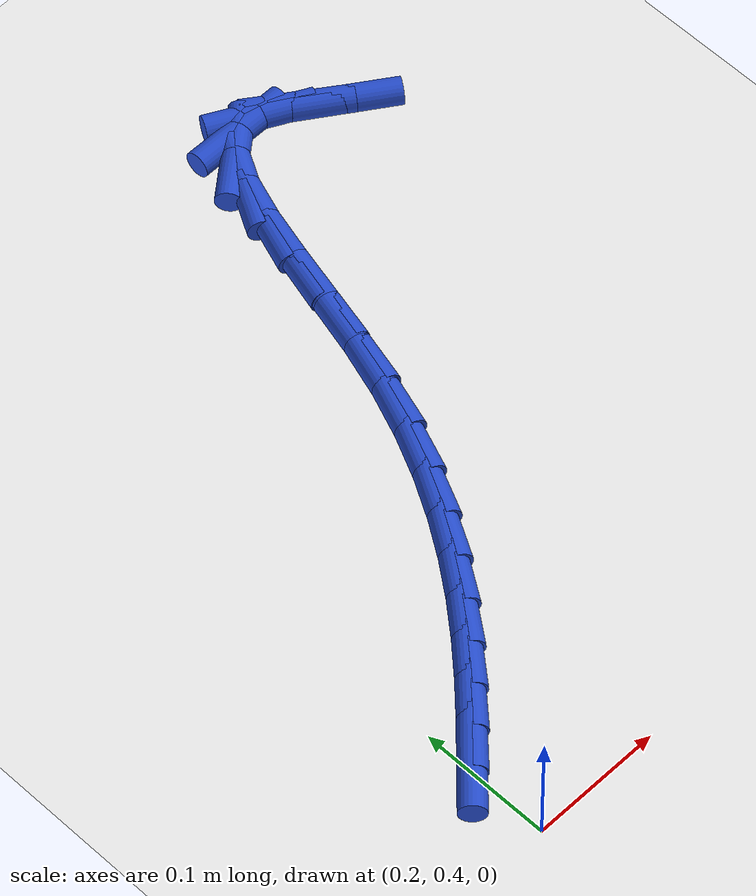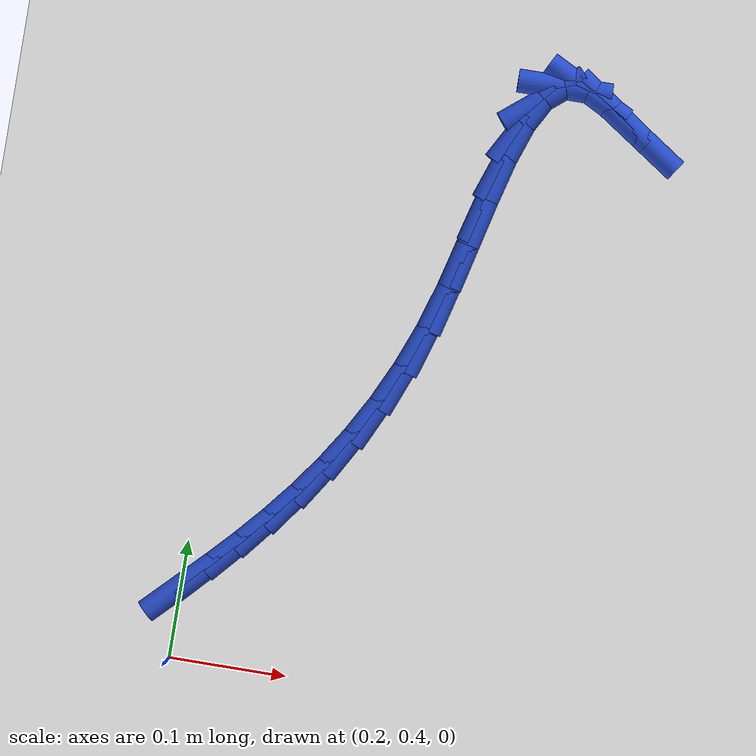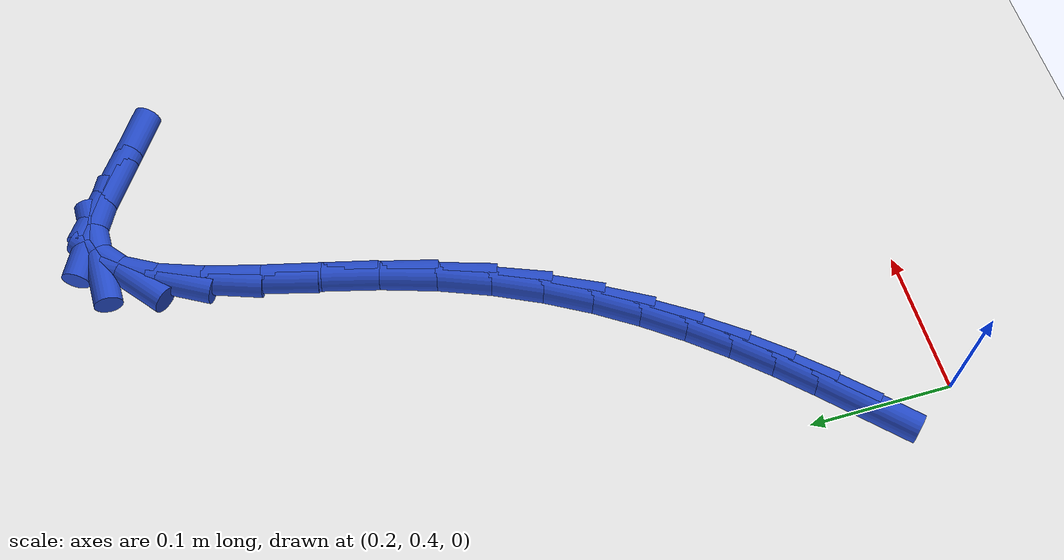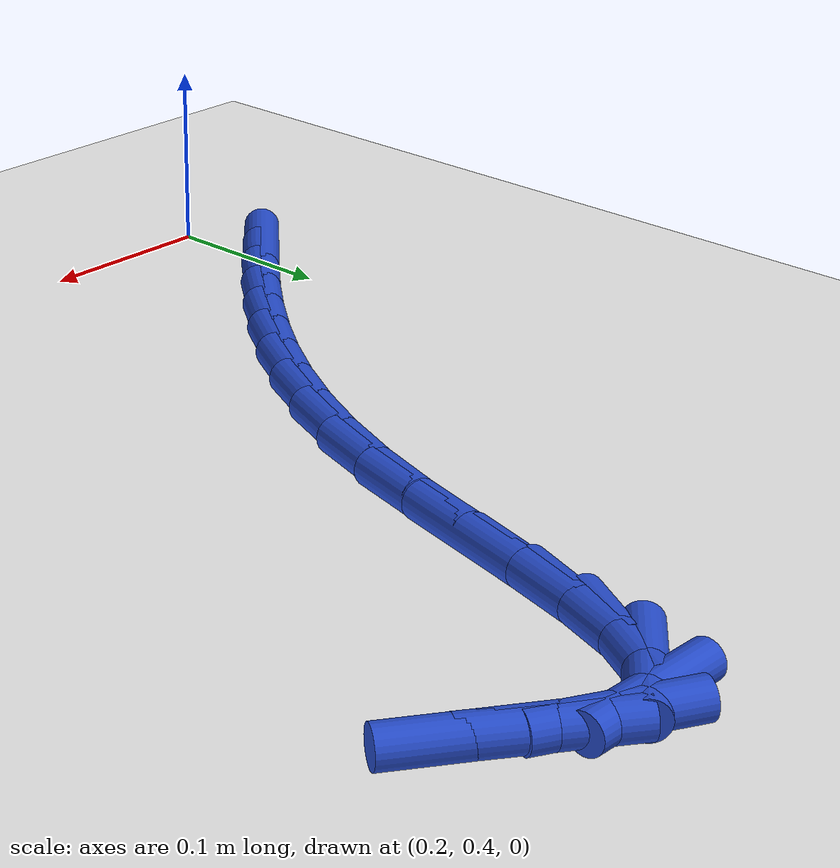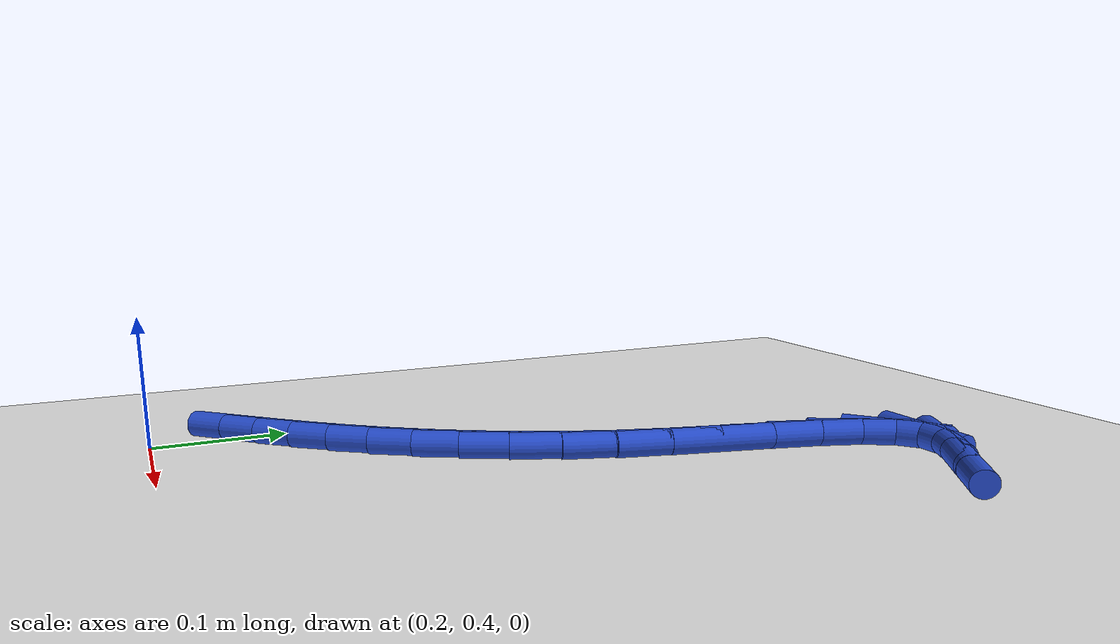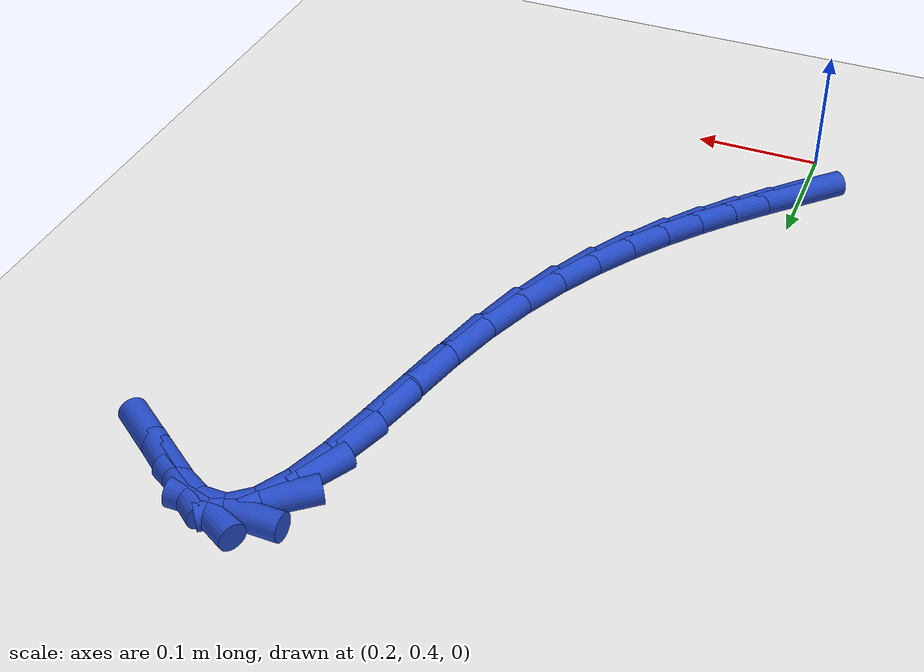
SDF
<sdf version="1.6">
 <world name="default">
  <model name="ground_plane">
   <static>1</static>
   <link name="link">
    <collision name="collision">
     <geometry><plane><normal>0 0 1</normal><size>100 100</size></plane></geometry>
     <surface><friction><ode><mu>100</mu><mu2>50</mu2></ode></friction></surface>
    </collision>
    <visual name="visual">
     <cast_shadows>0</cast_shadows>
     <geometry><plane><normal>0 0 1</normal><size>100 100</size></plane></geometry>
     <material>
      <script><uri>file://media/materials/scripts/gazebo.material</uri><name>Gazebo/WhiteGlow</name></script>
     </material>
    </visual>
   </link>
  </model>
  <model name="line">
   <link name="link_18">
    <pose>0.20257252881162002 0.46395151371870674 0.01 0 1.57 0.7851340331031088</pose>
    <collision name="collision">
     <geometry><cylinder><radius>0.01</radius><length>0.08</length></cylinder></geometry>
    </collision>
    <visual name="visual">
     <material>
      <script><name>Gazebo/Blue</name><uri>file://media/materials/scripts/gazebo.material</uri></script>
     </material>
     <geometry><cylinder><radius>0.01</radius><length>0.08</length></cylinder></geometry>
    </visual>
   </link>
   <link name="link_19">
    <pose>0.2238670176259704 0.4852347564640264 0.01 0 1.57 0.8091922949452807</pose>
    <collision name="collision">
     <geometry><cylinder><radius>0.01</radius><length>0.08</length></cylinder></geometry>
    </collision>
    <visual name="visual">
     <material>
      <script><name>Gazebo/Blue</name><uri>file://media/materials/scripts/gazebo.material</uri></script>
     </material>
     <geometry><cylinder><radius>0.01</radius><length>0.08</length></cylinder></geometry>
    </visual>
   </link>
   <link name="link_20">
    <pose>0.24499291930554368 0.5073907066180876 0.01 0 1.57 0.842997267074457</pose>
    <collision name="collision">
     <geometry><cylinder><radius>0.01</radius><length>0.08</length></cylinder></geometry>
    </collision>
    <visual name="visual">
     <material>
      <script><name>Gazebo/Blue</name><uri>file://media/materials/scripts/gazebo.material</uri></script>
     </material>
     <geometry><cylinder><radius>0.01</radius><length>0.08</length></cylinder></geometry>
    </visual>
   </link>
   <link name="link_21">
    <pose>0.2657315700870698 0.5306674097495204 0.01 0 1.57 0.8858393594590942</pose>
    <collision name="collision">
     <geometry><cylinder><radius>0.01</radius><length>0.08</length></cylinder></geometry>
    </collision>
    <visual name="visual">
     <material>
      <script><name>Gazebo/Blue</name><uri>file://media/materials/scripts/gazebo.material</uri></script>
     </material>
     <geometry><cylinder><radius>0.01</radius><length>0.08</length></cylinder></geometry>
    </visual>
   </link>
   <link name="link_22">
    <pose>0.2858643062072791 0.5553129114269553 0.01 0 1.57 0.9368326953475702</pose>
    <collision name="collision">
     <geometry><cylinder><radius>0.01</radius><length>0.08</length></cylinder></geometry>
    </collision>
    <visual name="visual">
     <material>
      <script><name>Gazebo/Blue</name><uri>file://media/materials/scripts/gazebo.material</uri></script>
     </material>
     <geometry><cylinder><radius>0.01</radius><length>0.08</length></cylinder></geometry>
    </visual>
   </link>
   <link name="link_23">
    <pose>0.3051724639029012 0.5815752572190216 0.01 0 1.57 0.9948658012850853</pose>
    <collision name="collision">
     <geometry><cylinder><radius>0.01</radius><length>0.08</length></cylinder></geometry>
    </collision>
    <visual name="visual">
     <material>
      <script><name>Gazebo/Blue</name><uri>file://media/materials/scripts/gazebo.material</uri></script>
     </material>
     <geometry><cylinder><radius>0.01</radius><length>0.08</length></cylinder></geometry>
    </visual>
   </link>
   <link name="link_24">
    <pose>0.3234373794106663 0.6097024926943497 0.01 0 1.57 1.0585848991596454</pose>
    <collision name="collision">
     <geometry><cylinder><radius>0.01</radius><length>0.08</length></cylinder></geometry>
    </collision>
    <visual name="visual">
     <material>
      <script><name>Gazebo/Blue</name><uri>file://media/materials/scripts/gazebo.material</uri></script>
     </material>
     <geometry><cylinder><radius>0.01</radius><length>0.08</length></cylinder></geometry>
    </visual>
   </link>
   <link name="link_25">
    <pose>0.34044038896730466 0.6399426634215701 0.01 0 1.57 1.1264250764798944</pose>
    <collision name="collision">
     <geometry><cylinder><radius>0.01</radius><length>0.08</length></cylinder></geometry>
    </collision>
    <visual name="visual">
     <material>
      <script><name>Gazebo/Blue</name><uri>file://media/materials/scripts/gazebo.material</uri></script>
     </material>
     <geometry><cylinder><radius>0.01</radius><length>0.08</length></cylinder></geometry>
    </visual>
   </link>
   <link name="link_26">
    <pose>0.35596282880954566 0.6725438149693118 0.01 0 1.57 1.196693108730085</pose>
    <collision name="collision">
     <geometry><cylinder><radius>0.01</radius><length>0.08</length></cylinder></geometry>
    </collision>
    <visual name="visual">
     <material>
      <script><name>Gazebo/Blue</name><uri>file://media/materials/scripts/gazebo.material</uri></script>
     </material>
     <geometry><cylinder><radius>0.01</radius><length>0.08</length></cylinder></geometry>
    </visual>
   </link>
   <link name="link_27">
    <pose>0.3697860351741201 0.7077539929062062 0.01 0 1.57 1.267136287806405</pose>
    <collision name="collision">
     <geometry><cylinder><radius>0.01</radius><length>0.08</length></cylinder></geometry>
    </collision>
    <visual name="visual">
     <material>
      <script><name>Gazebo/Blue</name><uri>file://media/materials/scripts/gazebo.material</uri></script>
     </material>
     <geometry><cylinder><radius>0.01</radius><length>0.08</length></cylinder></geometry>
    </visual>
   </link>
   <link name="link_28">
    <pose>0.3817046172806538 0.7457898669579235 0.01 0 1.57 1.3185308434865046</pose>
    <collision name="collision">
     <geometry><cylinder><radius>0.01</radius><length>0.08</length></cylinder></geometry>
    </collision>
    <visual name="visual">
     <material>
      <script><name>Gazebo/Blue</name><uri>file://media/materials/scripts/gazebo.material</uri></script>
     </material>
     <geometry><cylinder><radius>0.01</radius><length>0.08</length></cylinder></geometry>
    </visual>
   </link>
   <link name="link_29">
    <pose>0.39199762678412375 0.7857229392647994 0.01 0 1.57 1.3331264960094555</pose>
    <collision name="collision">
     <geometry><cylinder><radius>0.01</radius><length>0.08</length></cylinder></geometry>
    </collision>
    <visual name="visual">
     <material>
      <script><name>Gazebo/Blue</name><uri>file://media/materials/scripts/gazebo.material</uri></script>
     </material>
     <geometry><cylinder><radius>0.01</radius><length>0.08</length></cylinder></geometry>
    </visual>
   </link>
   <link name="link_30">
    <pose>0.4015557589306263 0.8251788551156206 0.01 0 1.57 1.3097695104657772</pose>
    <collision name="collision">
     <geometry><cylinder><radius>0.01</radius><length>0.08</length></cylinder></geometry>
    </collision>
    <visual name="visual">
     <material>
      <script><name>Gazebo/Blue</name><uri>file://media/materials/scripts/gazebo.material</uri></script>
     </material>
     <geometry><cylinder><radius>0.01</radius><length>0.08</length></cylinder></geometry>
    </visual>
   </link>
   <link name="link_31">
    <pose>0.4113088564795699 0.8616907194682312 0.01 0 1.57 1.234333936768814</pose>
    <collision name="collision">
     <geometry><cylinder><radius>0.01</radius><length>0.08</length></cylinder></geometry>
    </collision>
    <visual name="visual">
     <material>
      <script><name>Gazebo/Blue</name><uri>file://media/materials/scripts/gazebo.material</uri></script>
     </material>
     <geometry><cylinder><radius>0.01</radius><length>0.08</length></cylinder></geometry>
    </visual>
   </link>
   <link name="link_32">
    <pose>0.4221867621903627 0.8927916372804742 0.01 0 1.57 1.0626833598432595</pose>
    <collision name="collision">
     <geometry><cylinder><radius>0.01</radius><length>0.08</length></cylinder></geometry>
    </collision>
    <visual name="visual">
     <material>
      <script><name>Gazebo/Blue</name><uri>file://media/materials/scripts/gazebo.material</uri></script>
     </material>
     <geometry><cylinder><radius>0.01</radius><length>0.08</length></cylinder></geometry>
    </visual>
   </link>
   <link name="link_33">
    <pose>0.4351193188224129 0.9160147135101931 0.01 0 1.57 0.6802596081311569</pose>
    <collision name="collision">
     <geometry><cylinder><radius>0.01</radius><length>0.08</length></cylinder></geometry>
    </collision>
    <visual name="visual">
     <material>
      <script><name>Gazebo/Blue</name><uri>file://media/materials/scripts/gazebo.material</uri></script>
     </material>
     <geometry><cylinder><radius>0.01</radius><length>0.08</length></cylinder></geometry>
    </visual>
   </link>
   <link name="link_34">
    <pose>0.45103636913512857 0.9288930531152311 0.01 0 1.57 0.004475759901420822</pose>
    <collision name="collision">
     <geometry><cylinder><radius>0.01</radius><length>0.08</length></cylinder></geometry>
    </collision>
    <visual name="visual">
     <material>
      <script><name>Gazebo/Blue</name><uri>file://media/materials/scripts/gazebo.material</uri></script>
     </material>
     <geometry><cylinder><radius>0.01</radius><length>0.08</length></cylinder></geometry>
    </visual>
   </link>
   <link name="link_35">
    <pose>0.4708619097663652 0.9289817880675386 0.01 0 1.57 -0.47667261718434</pose>
    <collision name="collision">
     <geometry><cylinder><radius>0.01</radius><length>0.08</length></cylinder></geometry>
    </collision>
    <visual name="visual">
     <material>
      <script><name>Gazebo/Blue</name><uri>file://media/materials/scripts/gazebo.material</uri></script>
     </material>
     <geometry><cylinder><radius>0.01</radius><length>0.08</length></cylinder></geometry>
    </visual>
   </link>
   <link name="link_36">
    <pose>0.49477791926546966 0.9166318257528752 0.01 0 1.57 -0.6163897120340548</pose>
    <collision name="collision">
     <geometry><cylinder><radius>0.01</radius><length>0.08</length></cylinder></geometry>
    </collision>
    <visual name="visual">
     <material>
      <script><name>Gazebo/Blue</name><uri>file://media/materials/scripts/gazebo.material</uri></script>
     </material>
     <geometry><cylinder><radius>0.01</radius><length>0.08</length></cylinder></geometry>
    </visual>
   </link>
   <link name="link_37">
    <pose>0.5215062507462142 0.8976955335039689 0.01 0 1.57 -0.5953598450333591</pose>
    <collision name="collision">
     <geometry><cylinder><radius>0.01</radius><length>0.08</length></cylinder></geometry>
    </collision>
    <visual name="visual">
     <material>
      <script><name>Gazebo/Blue</name><uri>file://media/materials/scripts/gazebo.material</uri></script>
     </material>
     <geometry><cylinder><radius>0.01</radius><length>0.08</length></cylinder></geometry>
    </visual>
   </link>
  </model>
 </world>
</sdf>
